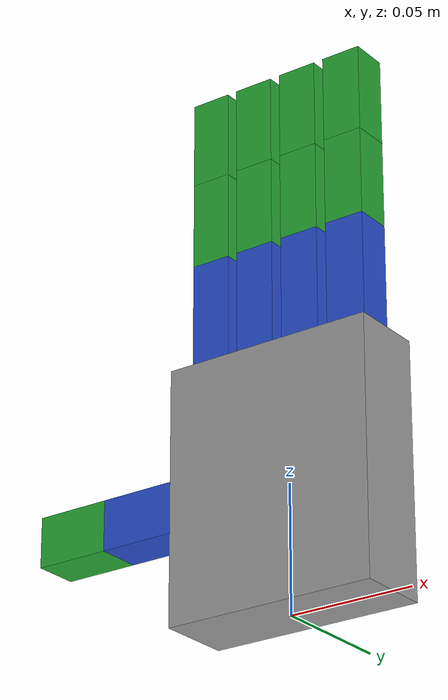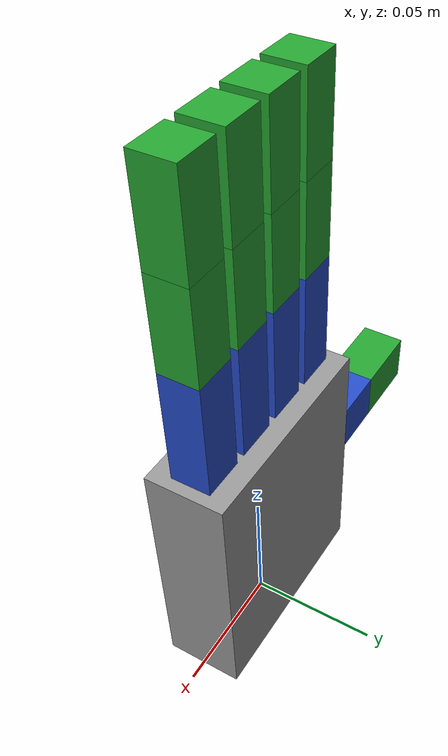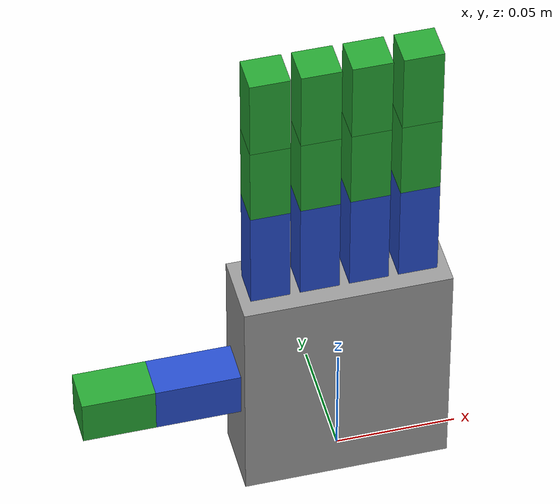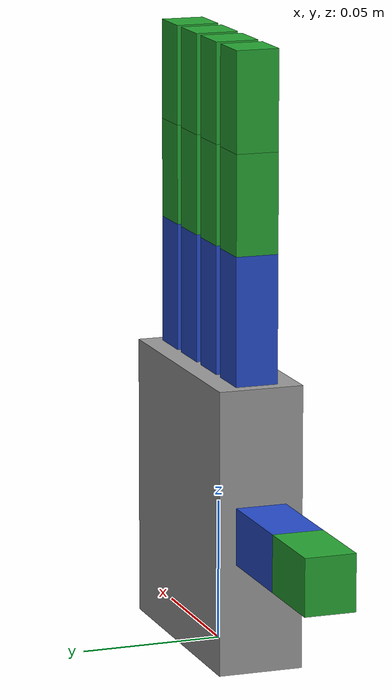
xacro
<?xml version="1.0"?>
<robot xmlns:xacro="http://www.ros.org/wiki/xacro" name="hand_robot">
    <xacro:arg name="initial_positions_file" default="initial_positions.yaml" />

    <!-- Import hand_robot urdf file -->
    <xacro:include filename="$(find hand_description)/urdf_hand/my_robot.urdf.xacro" />

    <!-- Import control_xacro -->
    <xacro:include filename="hand_robot.ros2_control.xacro" />

    <xacro:hand_robot_ros2_control name="FakeSystem" initial_positions_file="$(arg initial_positions_file)"/>

</robot>

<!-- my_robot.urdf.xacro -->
<robot xmlns:xacro="http://www.ros.org/wiki/xacro" name="hand_robot">
//files for the parts of the robotic hand

    <xacro:include filename="hand.urdf.xacro"/>

    <xacro:include filename="finger_1.xacro"/>
    <xacro:include filename="finger_2.xacro"/>
    <xacro:include filename="finger_3.xacro"/>
    <xacro:include filename="finger_4.xacro"/>
    <xacro:include filename="thumb.xacro"/>
    <xacro:include filename="common_properties.xacro"/>

    //The joints connecting the hand together

    <joint name="base_to_palm_1" type="fixed">
        <parent link="palm"/>
        <child link="base_1"/>

        <origin xyz="-0.030 0 0.05" rpy="0 0 0"/>

    </joint>

    <joint name="base_to_palm_2" type="fixed">
        <parent link="palm"/>
        <child link="base_2"/>

        <origin xyz="-0.010 0 0.05" rpy="0 0 0"/>

    </joint>

    <joint name="base_to_palm_3" type="fixed">
        <parent link="palm"/>
        <child link="base_3"/>

        <origin xyz="0.010 0 0.05" rpy="0 0 0"/>

    </joint>

    <joint name="base_to_palm_4" type="fixed">
        <parent link="palm"/>
        <child link="base_4"/>

        <origin xyz="0.030 0 0.05" rpy="0 0 0"/>

    </joint>

    <joint name="base_to_palm" type="fixed">
        <parent link="palm"/>
        <child link="base_thumb"/>

        <origin xyz="-0.0425 0 -0.001" rpy="0 -1.57 0"/>

    </joint>

</robot>

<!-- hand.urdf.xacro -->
<robot xmlns:xacro="http://www.ros.org/wiki/xacro">

    <link name="base_link"/>

    <link name="palm">

        <!-- Visual -->
        <visual>
            <geometry>
                <box size="0.085 0.030 0.10"/>
            </geometry>
            <material name="grey"/>
        </visual>

        <!-- Simple collision -->
        <collision>
            <geometry>
                <box size="0.080 0.030 0.100"/>
            </geometry>
        </collision>

    </link>

    <joint name="base_to_palm_joint" type="fixed">
        <parent link="base_link"/>
        <child link="palm"/>
        <origin xyz="0 0 0.05" rpy="0 0 0"/>
    </joint>

</robot>

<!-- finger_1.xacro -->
<robot xmlns:xacro="http://www.ros.org/wiki/xacro">

  <link name="base_1"/>

    <link name="finger_1_base">

        <visual>
            <geometry>
                <box size="0.016 0.015 0.045"/>
            </geometry>
            <origin xyz="0 0 0.0225" rpy="0 0 0"/>
            <material name="blue"/>
        </visual>

        <collision>
            <geometry>
                <box size="0.016 0.015 0.045"/>
            </geometry>

            <origin xyz="0 0 0.0225" rpy="0 0 0"/>
        </collision>

    </link>

    <link name="finger_1_middle">

        <visual>
            <geometry>
                <box size="0.016 0.015 0.035"/>
            </geometry>
            <origin xyz="0 0 0.0175" rpy="0 0 0"/>
            <material name="light_green"/>
        </visual>

        <collision>
            <geometry>
                <box size="0.016 0.015 0.035"/>
            </geometry>

            <origin xyz="0 0 0.0175" rpy="0 0 0"/>
        </collision>

    </link>

    <link name="finger_1_tip">

        <visual>
            <geometry>
                <box size="0.016 0.015 0.035"/>
            </geometry>
            <origin xyz="0 0 0.0175" rpy="0 0 0"/>
            <material name="dark_green"/>
        </visual>

        <collision>
            <geometry>
                <box size="0.016 0.015 0.035"/>
            </geometry>

            <origin xyz="0 0 0.0175" rpy="0 0 0"/>
        </collision>

    </link>

    <joint name="base_to_base_1" type="revolute">

        <parent link="base_1"/>
        <child link="finger_1_base"/>
        <origin xyz="0 0 0" rpy="0 0 0"/>
        <axis xyz="1 0 0"/>
        <limit
            effort="1000.0"
            velocity="1.0"
            lower="-1.57"
            upper="0.57"/>

    </joint>

    <joint name="base_to_middle_1" type="revolute">

        <parent link="finger_1_base"/>
        <child link="finger_1_middle"/>
        <origin xyz="0 0 0.045" rpy="0 0 0"/>
        <axis xyz="1 0 0"/>
        <limit
            effort="1000.0"
            velocity="1.0"
            lower="-0.57"
            upper="0.57"/>

    </joint>

    <joint name="middle_to_tip_1" type="revolute">

        <parent link="finger_1_middle"/>
        <child link="finger_1_tip"/>
        <origin xyz="0 0 0.035" rpy="0 0 0"/>
        <axis xyz="1 0 0"/>
        <limit
            effort="1000.0"
            velocity="1.0"
            lower="-0.57"
            upper="0.57"/>

    </joint>

</robot>

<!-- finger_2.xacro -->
<robot xmlns:xacro="http://www.ros.org/wiki/xacro">

    <link name="base_2"/>

    <link name="finger_2_base">

        <visual>
            <geometry>
                <box size="0.016 0.015 0.045"/>
            </geometry>
            <origin xyz="0 0 0.0225" rpy="0 0 0"/>
            <material name="blue"/>
        </visual>

        <collision>
            <geometry>
                <box size="0.016 0.015 0.045"/>
            </geometry>
            <origin xyz="0 0 0.0225" rpy="0 0 0"/>
        </collision>

    </link>

    <link name="finger_2_middle">

        <visual>
            <geometry>
                <box size="0.016 0.015 0.035"/>
            </geometry>
            <origin xyz="0 0 0.0175" rpy="0 0 0"/>
            <material name="light_green"/>
        </visual>

        <collision>
            <geometry>
                <box size="0.016 0.015 0.035"/>
            </geometry>
            <origin xyz="0 0 0.0175" rpy="0 0 0"/>
        </collision>

    </link>

    <link name="finger_2_tip">

        <visual>
            <geometry>
                <box size="0.016 0.015 0.035"/>
            </geometry>
            <origin xyz="0 0 0.0175" rpy="0 0 0"/>
            <material name="dark_green"/>
        </visual>

        <collision>
            <geometry>
                <box size="0.016 0.015 0.035"/>
            </geometry>
            <origin xyz="0 0 0.0175" rpy="0 0 0"/>
        </collision>

    </link>

    <joint name="base_to_base_2" type="revolute">

        <parent link="base_2"/>
        <child link="finger_2_base"/>

        <!-- End of 45 mm base segment -->
        <origin xyz="0 0 0" rpy="0 0 0"/>

        <axis xyz="1 0 0"/>

        <limit
            effort="1000.0"
            velocity="1.0"
            lower="-1.57"
            upper="0.57"/>

    </joint>

     <joint name="base_to_middle_2" type="revolute">

        <parent link="finger_2_base"/>
        <child link="finger_2_middle"/>

        <!-- Position of the joint at the end of the 45 mm segment -->
        <origin xyz="0 0 0.045" rpy="0 0 0"/>

        <axis xyz="1 0 0"/>

        <limit
            effort="1000.0"
            velocity="1.0"
            lower="-1.57"
            upper="0.57"/>

    </joint>

    <joint name="middle_to_tip_2" type="revolute">

        <parent link="finger_2_middle"/>
        <child link="finger_2_tip"/>

        <!-- Joint at the end of the 35 mm middle segment -->
        <origin xyz="0 0 0.035" rpy="0 0 0"/>

        <axis xyz="1 0 0"/>

        <limit
            effort="1000.0"
            velocity="1.0"
            lower="-1.57"
            upper="0.57"/>

    </joint>

</robot>

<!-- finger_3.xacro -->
<robot xmlns:xacro="http://www.ros.org/wiki/xacro">

  <link name="base_3"/>

    <link name="finger_3_base">

        <visual>
            <geometry>
                <box size="0.016 0.015 0.045"/>
            </geometry>
            <origin xyz="0 0 0.0225" rpy="0 0 0"/>
            <material name="blue"/>
        </visual>

        <collision>
            <geometry>
                <box size="0.016 0.015 0.045"/>
            </geometry>
            <origin xyz="0 0 0.0225" rpy="0 0 0"/>
        </collision>

    </link>

    <link name="finger_3_middle">

        <visual>
            <geometry>
                <box size="0.016 0.015 0.035"/>
            </geometry>
            <origin xyz="0 0 0.0175" rpy="0 0 0"/>
            <material name="light_green"/>
        </visual>

        <collision>
            <geometry>
                <box size="0.016 0.015 0.035"/>
            </geometry>
            <origin xyz="0 0 0.0175" rpy="0 0 0"/>
        </collision>

    </link>

    <link name="finger_3_tip">

        <visual>
            <geometry>
                <box size="0.016 0.015 0.035"/>
            </geometry>
            <origin xyz="0 0 0.0175" rpy="0 0 0"/>
            <material name="dark_green"/>
        </visual>

        <collision>
            <geometry>
                <box size="0.016 0.015 0.035"/>
            </geometry>
            <origin xyz="0 0 0.0175" rpy="0 0 0"/>
        </collision>

    </link>

    <joint name="base_to_base_3" type="revolute">

        <parent link="base_3"/>
        <child link="finger_3_base"/>
        <origin xyz="0 0 0" rpy="0 0 0"/>

        <axis xyz="1 0 0"/>

        <limit
            effort="1000.0"
            velocity="1.0"
            lower="-1.57"
            upper="0.57"/>

    </joint>

     <joint name="base_to_middle_3" type="revolute">

        <parent link="finger_3_base"/>
        <child link="finger_3_middle"/>
        <origin xyz="0 0 0.045" rpy="0 0 0"/>

        <axis xyz="1 0 0"/>

        <limit
            effort="1000.0"
            velocity="1.0"
            lower="-1.57"
            upper="0.57"/>

    </joint>

    <joint name="middle_to_tip_3" type="revolute">

        <parent link="finger_3_middle"/>
        <child link="finger_3_tip"/>
        <origin xyz="0 0 0.035" rpy="0 0 0"/>

        <axis xyz="1 0 0"/>

        <limit
            effort="1000.0"
            velocity="1.0"
            lower="-1.57"
            upper="0.57"/>

    </joint>

</robot>

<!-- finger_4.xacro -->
<robot xmlns:xacro="http://www.ros.org/wiki/xacro">

    <link name="base_4"/>

    <link name="finger_4_base">

        <visual>
            <geometry>
                <box size="0.016 0.015 0.045"/>
            </geometry>
            <origin xyz="0 0 0.0225" rpy="0 0 0"/>
            <material name="blue"/>
        </visual>

        <collision>
            <geometry>
                <box size="0.016 0.015 0.045"/>
            </geometry>
            <origin xyz="0 0 0.0225" rpy="0 0 0"/>
        </collision>

    </link>

    <link name="finger_4_middle">

        <visual>
            <geometry>
                <box size="0.016 0.015 0.035"/>
            </geometry>
            <origin xyz="0 0 0.0175" rpy="0 0 0"/>
            <material name="light_green"/>
        </visual>

        <collision>
            <geometry>
                <box size="0.016 0.015 0.035"/>
            </geometry>
            <origin xyz="0 0 0.0175" rpy="0 0 0"/>
        </collision>

    </link>

    <link name="finger_4_tip">

        <visual>
            <geometry>
                <box size="0.016 0.015 0.035"/>
            </geometry>
            <origin xyz="0 0 0.0175" rpy="0 0 0"/>
            <material name="dark_green"/>
        </visual>

        <collision>
            <geometry>
                <box size="0.016 0.015 0.035"/>
            </geometry>
            <origin xyz="0 0 0.0175" rpy="0 0 0"/>
        </collision>

    </link>

    <joint name="base_to_base_4" type="revolute">

        <parent link="base_4"/>
        <child link="finger_4_base"/>
        <origin xyz="0 0 0" rpy="0 0 0"/>

        <axis xyz="1 0 0"/>

        <limit
            effort="1000.0"
            velocity="1.0"
            lower="-1.57"
            upper="0.57"/>

    </joint>

     <joint name="base_to_middle_4" type="revolute">

        <parent link="finger_4_base"/>
        <child link="finger_4_middle"/>
        <origin xyz="0 0 0.045" rpy="0 0 0"/>

        <axis xyz="1 0 0"/>

        <limit
            effort="1000.0"
            velocity="1.0"
            lower="-1.57"
            upper="0.57"/>

    </joint>

    <joint name="middle_to_tip_4" type="revolute">

        <parent link="finger_4_middle"/>
        <child link="finger_4_tip"/>
        <origin xyz="0 0 0.035" rpy="0 0 0"/>

        <axis xyz="1 0 0"/>

        <limit
            effort="1000.0"
            velocity="1.0"
            lower="-1.57"
            upper="0.57"/>

    </joint>

</robot>

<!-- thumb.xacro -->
<robot xmlns:xacro="http://www.ros.org/wiki/xacro">

<link name="base_thumb"/>

    <link name="thumb_base">

        <visual>
            <geometry>
                <box size="0.020 0.018 0.035"/>
            </geometry>
            <origin xyz="0 0 0.0175" rpy="0 0 0"/>
            <material name="blue"/>
        </visual>

        <collision>
            <geometry>
                <box size="0.020 0.018 0.035"/>
            </geometry>

            <origin xyz="0 0 0.0175" rpy="0 0 0"/>
        </collision>

    </link>

    <link name="thumb_middle">

        <visual>
            <geometry>
                <box size="0.020 0.018 0.030"/>
            </geometry>
            <origin xyz="0 0 0.015" rpy="0 0 0"/>
            <material name="dark_green"/>
        </visual>

        <collision>
            <geometry>
                <box size="0.020 0.018 0.030"/>
            </geometry>

            <origin xyz="0 0 0.015" rpy="0 0 0"/>
        </collision>

    </link>

    <joint name="base_to_base_thumb" type="revolute">

        <parent link="base_thumb"/>
        <child link="thumb_base"/>

        <!-- End of 45 mm base segment -->
        <origin xyz="0 0 0" rpy="0 0 0"/>

        <axis xyz="1 0 0"/>

        <limit
            effort="1000.0"
            velocity="1.0"
            lower="-1.57"
            upper="0.57"/>

    </joint>

    <joint name="thumb_base_to_middle" type="revolute">

        <parent link="thumb_base"/>
        <child link="thumb_middle"/>

        <!-- End of 35 mm proximal segment -->
        <origin xyz="0 0 0.035" rpy="0 0 0"/>

        <axis xyz="1 0 0"/>

        <limit
            effort="1000.0"
            velocity="1.0"
            lower="-1.57"
            upper="0.57"/>

    </joint>

</robot>
